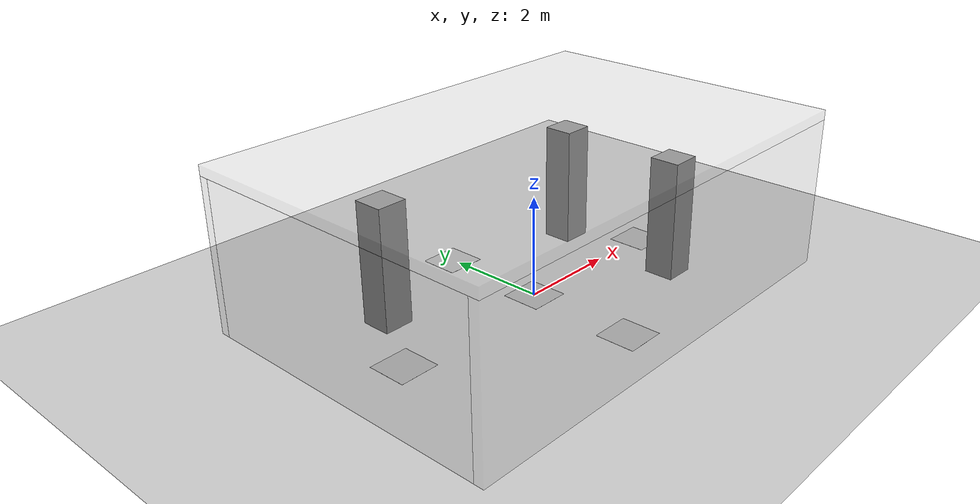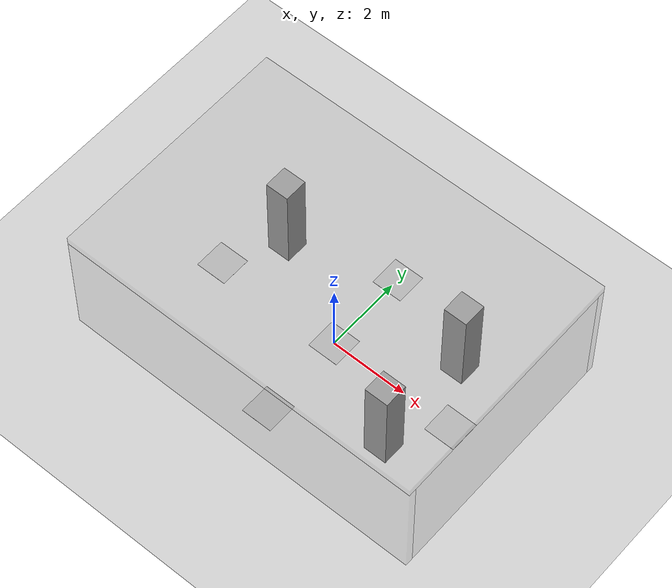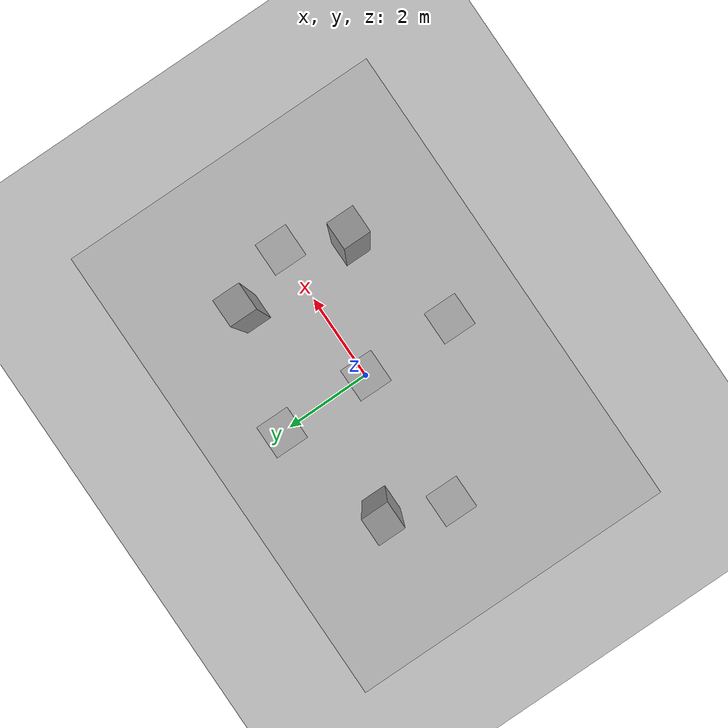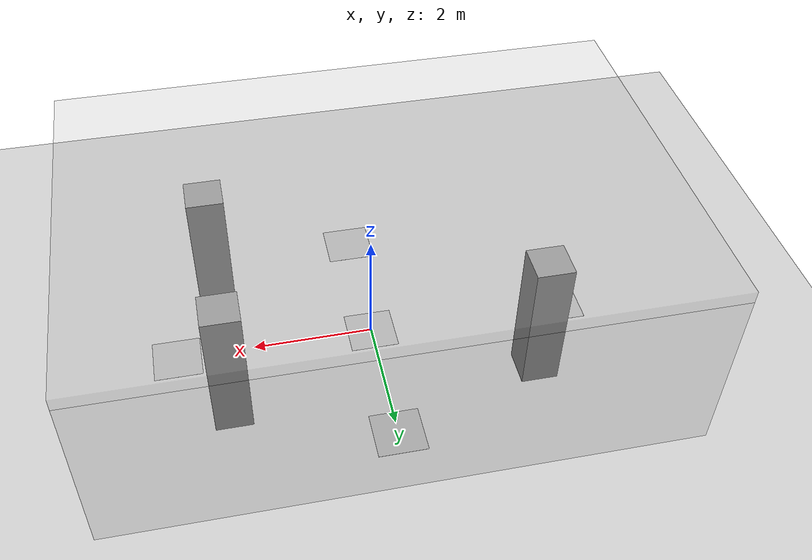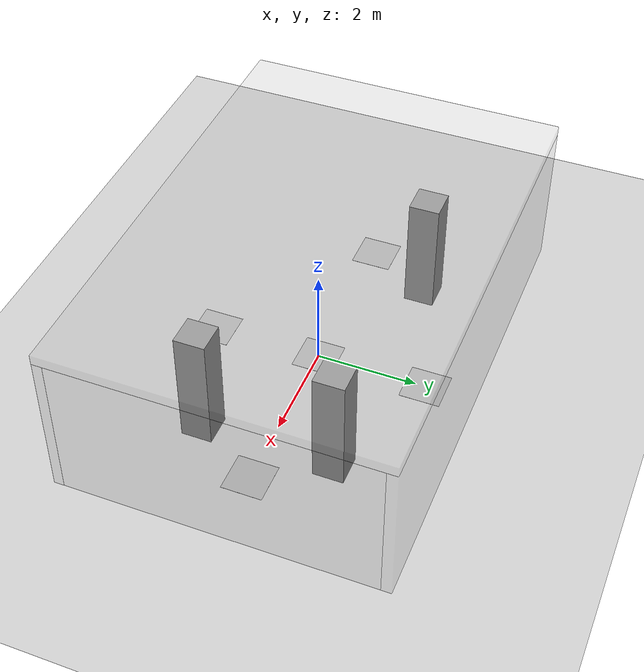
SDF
<sdf version="1.7">
 <world name="default">
  <light name="sun" type="directional">
   <pose>0 0 10 0 -0 0</pose>
   <diffuse>0.8 0.8 0.8 1</diffuse>
   <specular>0.2 0.2 0.2 1</specular>
   <attenuation>
    <range>1000</range>
    <constant>0.9</constant>
    <linear>0.01</linear>
    <quadratic>0.001</quadratic>
   </attenuation>
   <direction>-0.5 0.1 -0.9</direction>
   <spot><inner_angle>0</inner_angle><outer_angle>0</outer_angle><falloff>0</falloff></spot>
  </light>
  <gravity>0 0 -9.8</gravity>
  <magnetic_field>6e-06 2.3e-05 -4.2e-05</magnetic_field>
  <atmosphere type="adiabatic"/>
  <physics type="ode">
   <max_step_size>0.001</max_step_size>
   <real_time_factor>1</real_time_factor>
   <real_time_update_rate>1000</real_time_update_rate>
  </physics>
  <scene><ambient>0.4 0.4 0.4 1</ambient><background>0.7 0.7 0.7 1</background><shadows>1</shadows></scene>
  <spherical_coordinates>
   <surface_model>EARTH_WGS84</surface_model>
   <latitude_deg>0</latitude_deg>
   <longitude_deg>0</longitude_deg>
   <elevation>0</elevation>
   <heading_deg>0</heading_deg>
  </spherical_coordinates>
  <model name="A_H">
   <static>1</static>
   <link name="link">
    <collision name="collision">
     <geometry><plane><normal>0 0 1</normal><size>0.8 0.8</size></plane></geometry>
     <surface><friction><ode><mu>100</mu><mu2>50</mu2></ode></friction></surface>
    </collision>
    <visual name="visual">
     <cast_shadows>0</cast_shadows>
     <geometry><plane><normal>0 0 1</normal><size>0.8 0.8</size></plane></geometry>
     <material>
      <script>
       <uri>model://A_H/materials/scripts</uri>
       <uri>model://A_H/materials/textures/</uri>
       <name>A_H/A_H</name>
      </script>
     </material>
    </visual>
   </link>
   <pose>0 0 0.001 0 0 -1.5708</pose>
  </model>
  <model name="drop_target_1">
   <static>1</static>
   <link name="link">
    <collision name="collision">
     <geometry><plane><normal>0 0 1</normal><size>0.8 0.8</size></plane></geometry>
     <surface><friction><ode><mu>100</mu><mu2>50</mu2></ode></friction></surface>
    </collision>
    <visual name="visual">
     <cast_shadows>0</cast_shadows>
     <geometry><plane><normal>0 0 1</normal><size>0.8 0.8</size></plane></geometry>
     <material>
      <script>
       <uri>model://drop_target/materials/scripts</uri>
       <uri>model://drop_target/materials/textures/</uri>
       <name>drop_target/drop_target</name>
      </script>
     </material>
    </visual>
   </link>
   <pose>3.3 0 0.001 0 0 -1.5708</pose>
  </model>
  <model name="drop_target_2">
   <static>1</static>
   <link name="link">
    <collision name="collision">
     <geometry><plane><normal>0 0 1</normal><size>0.8 0.8</size></plane></geometry>
     <surface><friction><ode><mu>100</mu><mu2>50</mu2></ode></friction></surface>
    </collision>
    <visual name="visual">
     <cast_shadows>0</cast_shadows>
     <geometry><plane><normal>0 0 1</normal><size>0.8 0.8</size></plane></geometry>
     <material>
      <script>
       <uri>model://drop_target/materials/scripts</uri>
       <uri>model://drop_target/materials/textures/</uri>
       <name>drop_target/drop_target</name>
      </script>
     </material>
    </visual>
   </link>
   <pose>0 2.2 0.001 0 0 -1.5708</pose>
  </model>
  <model name="drop_target_3">
   <static>1</static>
   <link name="link">
    <collision name="collision">
     <geometry><plane><normal>0 0 1</normal><size>0.8 0.8</size></plane></geometry>
     <surface><friction><ode><mu>100</mu><mu2>50</mu2></ode></friction></surface>
    </collision>
    <visual name="visual">
     <cast_shadows>0</cast_shadows>
     <geometry><plane><normal>0 0 1</normal><size>0.8 0.8</size></plane></geometry>
     <material>
      <script>
       <uri>model://drop_target/materials/scripts</uri>
       <uri>model://drop_target/materials/textures/</uri>
       <name>drop_target/drop_target</name>
      </script>
     </material>
    </visual>
   </link>
   <pose>-3.3 0 0.001 0 0 -1.5708</pose>
  </model>
  <model name="drop_target_4">
   <static>1</static>
   <link name="link">
    <collision name="collision">
     <geometry><plane><normal>0 0 1</normal><size>0.8 0.8</size></plane></geometry>
     <surface><friction><ode><mu>100</mu><mu2>50</mu2></ode></friction></surface>
    </collision>
    <visual name="visual">
     <cast_shadows>0</cast_shadows>
     <geometry><plane><normal>0 0 1</normal><size>0.8 0.8</size></plane></geometry>
     <material>
      <script>
       <uri>model://drop_target/materials/scripts</uri>
       <uri>model://drop_target/materials/textures/</uri>
       <name>drop_target/drop_target</name>
      </script>
     </material>
    </visual>
   </link>
   <pose>0 -2.2 0.001 0 0 -1.5708</pose>
  </model>
  <model name="unit_box">
   <static>1</static>
   <pose>2.5 -1.3 1.2 -0 0 -0</pose>
   <link name="link">
    <inertial>
     <mass>1</mass>
     <inertia>
      <ixx>0.166667</ixx>
      <ixy>0</ixy>
      <ixz>0</ixz>
      <iyy>0.166667</iyy>
      <iyz>0</iyz>
      <izz>0.166667</izz>
     </inertia>
    </inertial>
    <collision name="collision"><geometry><box><size>0.6 0.6 2.4</size></box></geometry></collision>
    <visual name="visual">
     <geometry><box><size>0.6 0.6 2.4</size></box></geometry>
     <material>
      <script><name>Gazebo/Grey</name><uri>file://media/materials/scripts/gazebo.material</uri></script>
     </material>
    </visual>
   </link>
  </model>
  <model name="unit_box_1">
   <pose>2.5 1.3 1.2 -0 0 -0</pose>
   <static>1</static>
   <link name="link">
    <inertial>
     <mass>1</mass>
     <inertia>
      <ixx>0.166667</ixx>
      <ixy>0</ixy>
      <ixz>0</ixz>
      <iyy>0.166667</iyy>
      <iyz>0</iyz>
      <izz>0.166667</izz>
     </inertia>
    </inertial>
    <collision name="collision"><geometry><box><size>0.6 0.6 2.4</size></box></geometry></collision>
    <visual name="visual">
     <geometry><box><size>0.6 0.6 2.4</size></box></geometry>
     <material>
      <script><name>Gazebo/Grey</name><uri>file://media/materials/scripts/gazebo.material</uri></script>
     </material>
    </visual>
   </link>
  </model>
  <model name="unit_box_2">
   <static>1</static>
   <pose>-2.5 1.3 1.2 -0 0 -0</pose>
   <link name="link">
    <inertial>
     <mass>1</mass>
     <inertia>
      <ixx>0.166667</ixx>
      <ixy>0</ixy>
      <ixz>0</ixz>
      <iyy>0.166667</iyy>
      <iyz>0</iyz>
      <izz>0.166667</izz>
     </inertia>
    </inertial>
    <collision name="collision"><geometry><box><size>0.6 0.6 2.4</size></box></geometry></collision>
    <visual name="visual">
     <geometry><box><size>0.6 0.6 2.4</size></box></geometry>
     <material>
      <script><name>Gazebo/Grey</name><uri>file://media/materials/scripts/gazebo.material</uri></script>
     </material>
    </visual>
   </link>
  </model>
  <model name="ground_plane">
   <static>1</static>
   <link name="link">
    <collision name="collision">
     <geometry><plane><normal>0 0 1</normal><size>100 100</size></plane></geometry>
     <surface><friction><ode><mu>100</mu><mu2>50</mu2></ode></friction></surface>
    </collision>
    <visual name="visual">
     <cast_shadows>0</cast_shadows>
     <geometry><plane><normal>0 0 1</normal><size>100 100</size></plane></geometry>
     <material>
      <script><uri>file://media/materials/scripts/gazebo.material</uri><name>Gazebo/Grey</name></script>
     </material>
    </visual>
   </link>
  </model>
  <model name="Wall_0">
   <pose>-4.6 0 0 0 -0 0</pose>
   <link name="Wall_0">
    <collision name="Wall_0_Collision">
     <geometry><box><size>6 0.2 3</size></box></geometry>
     <pose>0 0 1.5 0 -0 0</pose>
    </collision>
    <visual name="Wall_0_Visual">
     <transparency>0.9</transparency>
     <pose>0 0 1.5 0 -0 0</pose>
     <geometry><box><size>6 0.2 3</size></box></geometry>
     <material>
      <script><uri>file://media/materials/scripts/gazebo.material</uri><name>Gazebo/Grey</name></script>
      <ambient>1 1 1 1</ambient>
     </material>
     <meta><layer>0</layer></meta>
    </visual>
    <pose>0 0 0 0 -0 1.5708</pose>
   </link>
   <static>1</static>
  </model>
  <model name="Wall_0_0">
   <pose>4.6 0 0 0 -0 0</pose>
   <link name="Wall_0">
    <collision name="Wall_0_Collision">
     <geometry><box><size>6 0.2 3</size></box></geometry>
     <pose>0 0 1.5 0 -0 0</pose>
    </collision>
    <visual name="Wall_0_Visual">
     <transparency>0.9</transparency>
     <pose>0 0 1.5 0 -0 0</pose>
     <geometry><box><size>6 0.2 3</size></box></geometry>
     <material>
      <script><uri>file://media/materials/scripts/gazebo.material</uri><name>Gazebo/Grey</name></script>
      <ambient>1 1 1 1</ambient>
     </material>
     <meta><layer>0</layer></meta>
    </visual>
    <pose>0 0 0 0 -0 1.5708</pose>
   </link>
   <static>1</static>
  </model>
  <model name="Wall_0_1">
   <pose>0 3.1 0 0 -0 1.5708</pose>
   <link name="Wall_0">
    <collision name="Wall_0_Collision">
     <geometry><box><size>9.4 0.2 3</size></box></geometry>
     <pose>0 0 1.5 0 -0 0</pose>
    </collision>
    <visual name="Wall_0_Visual">
     <transparency>0.9</transparency>
     <pose>0 0 1.5 0 -0 0</pose>
     <geometry><box><size>9.4 0.2 3</size></box></geometry>
     <material>
      <script><uri>file://media/materials/scripts/gazebo.material</uri><name>Gazebo/Grey</name></script>
      <ambient>1 1 1 1</ambient>
     </material>
     <meta><layer>0</layer></meta>
    </visual>
    <pose>0 0 0 0 -0 1.5708</pose>
   </link>
   <static>1</static>
  </model>
  <model name="Wall_0_2">
   <pose>0 -3.1 0 0 -0 1.5708</pose>
   <link name="Wall_0">
    <collision name="Wall_0_Collision">
     <geometry><box><size>9.4 0.2 3</size></box></geometry>
     <pose>0 0 1.5 0 -0 0</pose>
    </collision>
    <visual name="Wall_0_Visual">
     <transparency>0.9</transparency>
     <pose>0 0 1.5 0 -0 0</pose>
     <geometry><box><size>9.4 0.2 3</size></box></geometry>
     <material>
      <script><uri>file://media/materials/scripts/gazebo.material</uri><name>Gazebo/Grey</name></script>
      <ambient>1 1 1 1</ambient>
     </material>
     <meta><layer>0</layer></meta>
    </visual>
    <pose>0 0 0 0 -0 1.5708</pose>
   </link>
   <static>1</static>
  </model>
  <model name="Wall_0_3">
   <pose>0 0 1.6 0 -0 1.5708</pose>
   <link name="Wall_0">
    <collision name="Wall_0_Collision">
     <geometry><box><size>9.4 6.4 0.2</size></box></geometry>
     <pose>0 0 1.5 0 -0 0</pose>
    </collision>
    <visual name="Wall_0_Visual">
     <transparency>0.9</transparency>
     <pose>0 0 1.5 0 -0 0</pose>
     <geometry><box><size>9.4 6.4 0.2</size></box></geometry>
     <material>
      <script><uri>file://media/materials/scripts/gazebo.material</uri><name>Gazebo/Grey</name></script>
      <ambient>1 1 1 1</ambient>
     </material>
     <meta><layer>0</layer></meta>
    </visual>
    <pose>0 0 0 0 -0 1.5708</pose>
   </link>
   <static>1</static>
  </model>
 </world>
</sdf>
